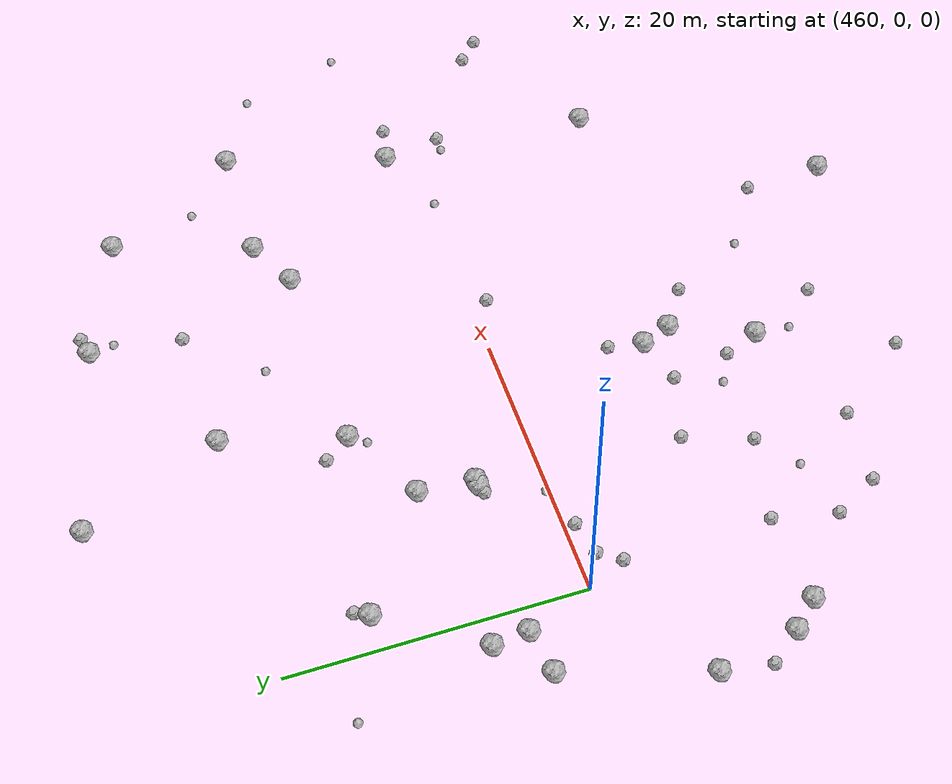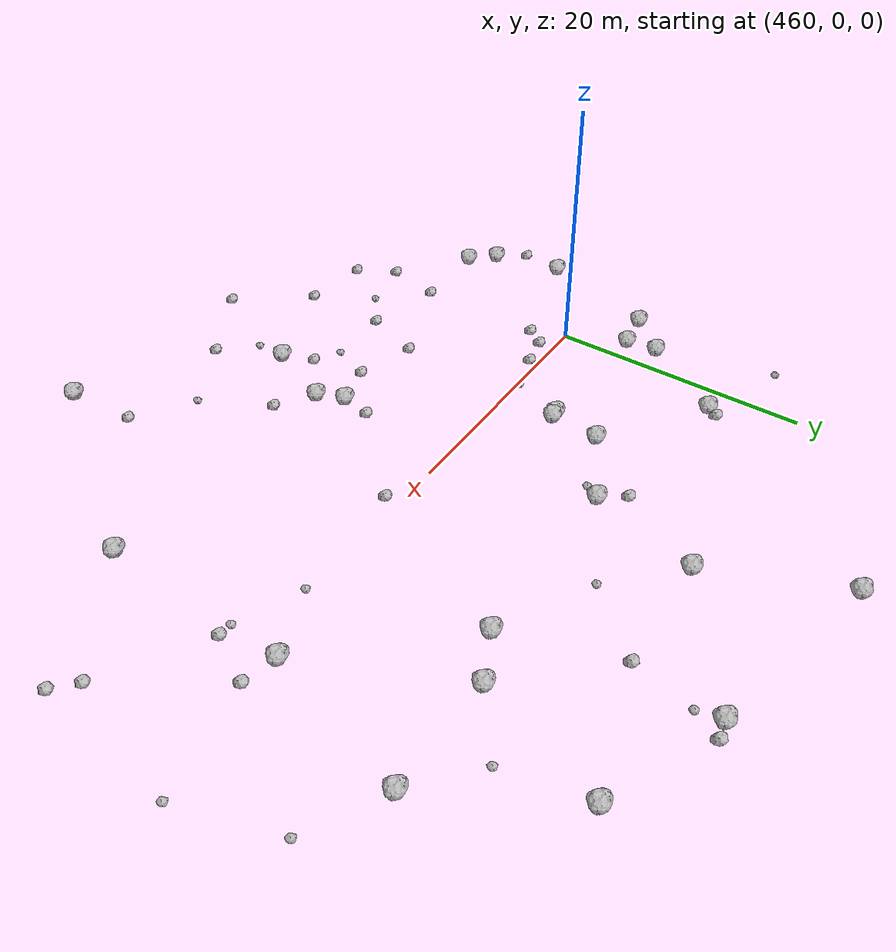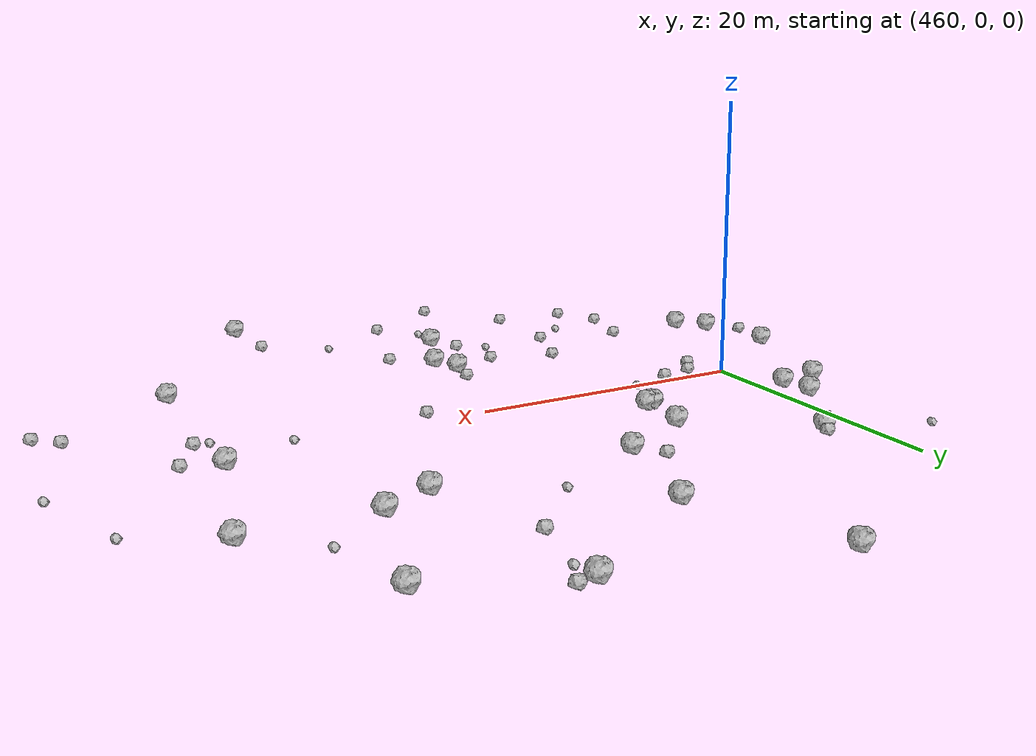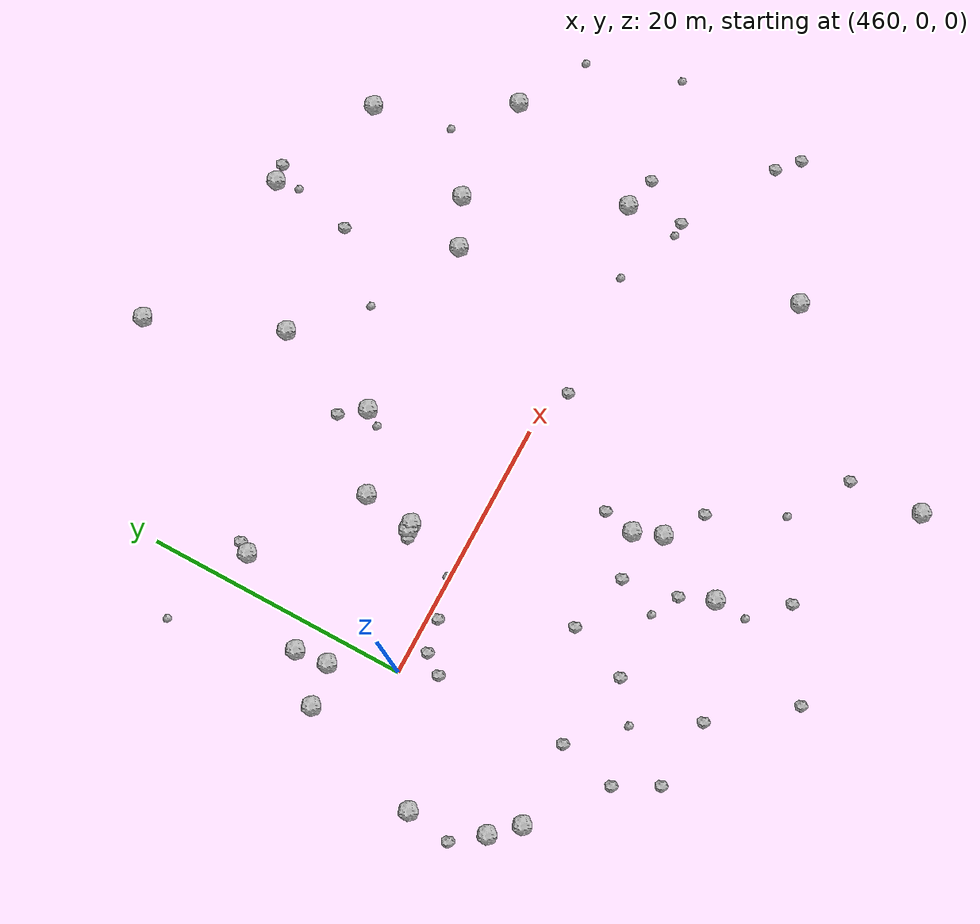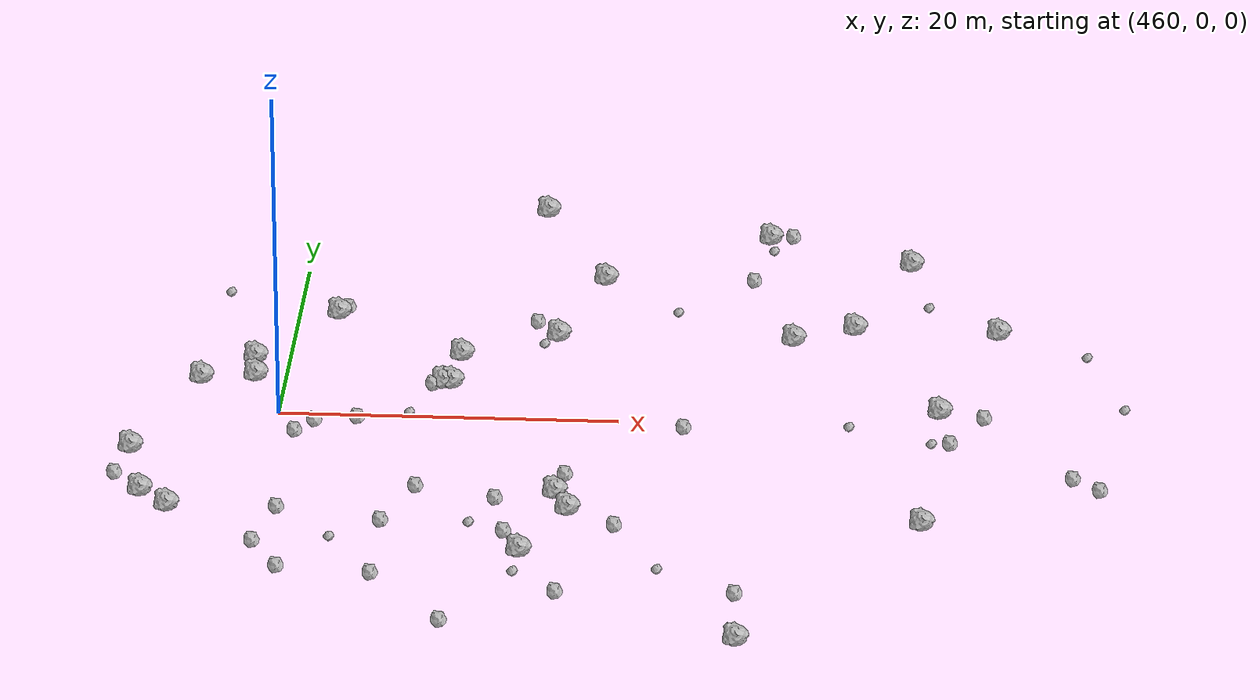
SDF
<sdf version="1.6">
 <world name="default">
  <include><uri>model://sun</uri></include>
  <model name="rock1_12_3">
   <include><uri>model://rock1</uri><pose>475.8442910195171 11.251353177630271 0.5 0 0 0</pose></include>
  </model>
  <model name="rock1_12_4">
   <include><uri>model://rock1</uri><pose>498.06001985945545 -13.038153300819602 0.5 0 0 0</pose></include>
  </model>
  <model name="rock1_12_5">
   <include><uri>model://rock1</uri><pose>453.0960426240327 -11.013474816293595 0.5 0 0 0</pose></include>
  </model>
  <model name="rock1_12_6">
   <include><uri>model://rock1</uri><pose>477.7838059551249 -12.144639328598117 0.5 0 0 0</pose></include>
  </model>
  <model name="rock1_12_7">
   <include><uri>model://rock1</uri><pose>498.8344683931514 1.704171813327271 0.5 0 0 0</pose></include>
  </model>
  <model name="rock1_12_8">
   <include><uri>model://rock1</uri><pose>493.55645538695524 13.079697505131683 0.5 0 0 0</pose></include>
  </model>
  <model name="rock1_12_9">
   <include><uri>model://rock1</uri><pose>474.07843626242436 29.374352875696488 0.5 0 0 0</pose></include>
  </model>
  <model name="rock1_12_10">
   <include><uri>model://rock1</uri><pose>470.2454827259702 8.221763390067302 0.5 0 0 0</pose></include>
  </model>
  <model name="rock1_12_11">
   <include><uri>model://rock1</uri><pose>462.4139735472647 13.698806191569169 0.5 0 0 0</pose></include>
  </model>
  <model name="rock1_12_12">
   <include><uri>model://rock1</uri><pose>469.9201415987065 4.350226567593481 0.5 0 0 0</pose></include>
  </model>
  <model name="rock1_12_13">
   <include><uri>model://rock1</uri><pose>451.9213062337228 -5.385150036978015 0.5 0 0 0</pose></include>
  </model>
  <model name="rock1_12_14">
   <include><uri>model://rock1</uri><pose>455.0627278788144 4.218671527680279 0.5 0 0 0</pose></include>
  </model>
  <model name="rock1_12_15">
   <include><uri>model://rock1</uri><pose>458.23446405049947 4.710366569108679 0.5 0 0 0</pose></include>
  </model>
  <model name="rock1_12_16">
   <include><uri>model://rock1</uri><pose>496.76543327298106 22.47018915423333 0.5 0 0 0</pose></include>
  </model>
  <model name="rock1_12_17">
   <include><uri>model://rock1</uri><pose>478.21526285413086 19.487351526647522 0.5 0 0 0</pose></include>
  </model>
  <model name="rock1_12_18">
   <include><uri>model://rock1</uri><pose>454.83975791321143 -12.881580612366584 0.5 0 0 0</pose></include>
  </model>
  <model name="rock1_12_19">
   <include><uri>model://rock1</uri><pose>489.9276836727248 11.34329767935705 0.5 0 0 0</pose></include>
  </model>
  <model name="rock1_12_20">
   <include><uri>model://rock1</uri><pose>469.422989177643 4.3171709832793965 0.5 0 0 0</pose></include>
  </model>
  <model name="rock1_12_21">
   <include><uri>model://rock1</uri><pose>502.17591623206533 12.8424611449149 0.5 0 0 0</pose></include>
  </model>
  <model name="rock1_12_22">
   <include><uri>model://rock1</uri><pose>475.3538600189823 -17.5904223011849 0.5 0 0 0</pose></include>
  </model>
  <model name="rock1_12_23">
   <include><uri>model://rock1</uri><pose>457.9885690891316 7.196711530131289 0.5 0 0 0</pose></include>
  </model>
  <model name="rock1_12_24">
   <include><uri>model://rock1</uri><pose>488.0258498432162 25.982878152620145 0.5 0 0 0</pose></include>
  </model>
  <model name="rock1_12_25">
   <include><uri>model://rock1</uri><pose>476.9324257382715 -10.018574057726777 0.5 0 0 0</pose></include>
  </model>
  <model name="rock1_12_26">
   <include><uri>model://rock1</uri><pose>488.0647958386327 -27.847822977042064 0.5 0 0 0</pose></include>
  </model>
  <model name="rock2_12_0">
   <include><uri>model://rock2</uri><pose>461.1161613957313 -12.736172520726907 0.3 0 0 0</pose></include>
  </model>
  <model name="rock2_12_1">
   <include><uri>model://rock2</uri><pose>483.87069675909544 -1.0853245197209844 0.3 0 0 0</pose></include>
  </model>
  <model name="rock2_12_2">
   <include><uri>model://rock2</uri><pose>506.6083744265853 -6.727543735776155 0.3 0 0 0</pose></include>
  </model>
  <model name="rock2_12_3">
   <include><uri>model://rock2</uri><pose>467.1981563583752 -14.133214582170115 0.3 0 0 0</pose></include>
  </model>
  <model name="rock2_12_4">
   <include><uri>model://rock2</uri><pose>477.70108916155135 -22.57702231718458 0.3 0 0 0</pose></include>
  </model>
  <model name="rock2_12_5">
   <include><uri>model://rock2</uri><pose>467.18449112107106 -20.795442002911905 0.3 0 0 0</pose></include>
  </model>
  <model name="rock2_12_6">
   <include><uri>model://rock2</uri><pose>477.3548247839383 -7.626686463556986 0.3 0 0 0</pose></include>
  </model>
  <model name="rock2_12_7">
   <include><uri>model://rock2</uri><pose>461.81352298472797 -20.204897119300792 0.3 0 0 0</pose></include>
  </model>
  <model name="rock2_12_8">
   <include><uri>model://rock2</uri><pose>464.7119466399172 -0.6679870346802694 0.3 0 0 0</pose></include>
  </model>
  <model name="rock2_12_9">
   <include><uri>model://rock2</uri><pose>487.20970470647666 19.680693612135393 0.3 0 0 0</pose></include>
  </model>
  <model name="rock2_12_10">
   <include><uri>model://rock2</uri><pose>468.8551659668065 -9.611978638748425 0.3 0 0 0</pose></include>
  </model>
  <model name="rock2_12_11">
   <include><uri>model://rock2</uri><pose>474.45147877629864 13.083356502713087 0.3 0 0 0</pose></include>
  </model>
  <model name="rock2_12_12">
   <include><uri>model://rock2</uri><pose>487.7499077809768 -22.277339151625426 0.3 0 0 0</pose></include>
  </model>
  <model name="rock2_12_13">
   <include><uri>model://rock2</uri><pose>480.5423537677373 -14.061605856523 0.3 0 0 0</pose></include>
  </model>
  <model name="rock2_12_14">
   <include><uri>model://rock2</uri><pose>468.81102008954474 4.081080546090405 0.3 0 0 0</pose></include>
  </model>
  <model name="rock2_12_15">
   <include><uri>model://rock2</uri><pose>499.46317024232474 -2.417030152839125 0.3 0 0 0</pose></include>
  </model>
  <model name="rock2_12_16">
   <include><uri>model://rock2</uri><pose>501.40128864517 1.0988447612725807 0.3 0 0 0</pose></include>
  </model>
  <model name="rock2_12_17">
   <include><uri>model://rock2</uri><pose>460.13958252552163 -17.099250500101537 0.3 0 0 0</pose></include>
  </model>
  <model name="rock2_12_18">
   <include><uri>model://rock2</uri><pose>489.3530336268446 26.2704478250824 0.3 0 0 0</pose></include>
  </model>
  <model name="rock2_12_19">
   <include><uri>model://rock2</uri><pose>451.3503358176277 -8.817719152410763 0.3 0 0 0</pose></include>
  </model>
  <model name="rock2_12_20">
   <include><uri>model://rock2</uri><pose>462.24453700213235 -1.1935101871437155 0.3 0 0 0</pose></include>
  </model>
  <model name="rock2_12_21">
   <include><uri>model://rock2</uri><pose>471.4906660173215 -26.379677520311326 0.3 0 0 0</pose></include>
  </model>
  <model name="rock2_12_22">
   <include><uri>model://rock2</uri><pose>461.20605261862545 -2.655789254916968 0.3 0 0 0</pose></include>
  </model>
  <model name="rock2_12_23">
   <include><uri>model://rock2</uri><pose>474.2980929035106 -15.125343217836472 0.3 0 0 0</pose></include>
  </model>
  <model name="rock2_12_24">
   <include><uri>model://rock2</uri><pose>473.5232452059449 -10.958533729676688 0.3 0 0 0</pose></include>
  </model>
  <model name="rock2_12_25">
   <include><uri>model://rock2</uri><pose>508.1654777651438 -8.150862513006171 0.3 0 0 0</pose></include>
  </model>
  <model name="rock2_12_26">
   <include><uri>model://rock2</uri><pose>462.88300794036127 14.59761253031818 0.3 0 0 0</pose></include>
  </model>
  <model name="rock3_12_0">
   <include><uri>model://rock3</uri><pose>498.38349264841844 -2.4385611387837685 0.2 0 0 0</pose></include>
  </model>
  <model name="rock3_12_1">
   <include><uri>model://rock3</uri><pose>509.6389820801079 2.717281046441883 0.2 0 0 0</pose></include>
  </model>
  <model name="rock3_12_2">
   <include><uri>model://rock3</uri><pose>475.144671886096 -20.100911161973816 0.2 0 0 0</pose></include>
  </model>
  <model name="rock3_12_3">
   <include><uri>model://rock3</uri><pose>482.81586186204396 14.946727194080601 0.2 0 0 0</pose></include>
  </model>
  <model name="rock3_12_4">
   <include><uri>model://rock3</uri><pose>455.56217019669197 16.439668437463766 0.2 0 0 0</pose></include>
  </model>
  <model name="rock3_12_5">
   <include><uri>model://rock3</uri><pose>464.43925431215604 -16.281483381547474 0.2 0 0 0</pose></include>
  </model>
  <model name="rock3_12_6">
   <include><uri>model://rock3</uri><pose>483.2399322028511 -19.432702235022116 0.2 0 0 0</pose></include>
  </model>
  <model name="rock3_12_7">
   <include><uri>model://rock3</uri><pose>467.7099150989872 0.19752091960032558 0.2 0 0 0</pose></include>
  </model>
  <model name="rock3_12_8">
   <include><uri>model://rock3</uri><pose>472.2248805959666 -14.049869502217618 0.2 0 0 0</pose></include>
  </model>
  <model name="rock3_12_9">
   <include><uri>model://rock3</uri><pose>493.53056875309954 -0.40880002761055323 0.2 0 0 0</pose></include>
  </model>
  <model name="rock3_12_10">
   <include><uri>model://rock3</uri><pose>475.03443372325796 10.0895226854758 0.2 0 0 0</pose></include>
  </model>
  <model name="rock3_12_11">
   <include><uri>model://rock3</uri><pose>507.4398126902284 9.864106725517551 0.2 0 0 0</pose></include>
  </model>
  <model name="rock3_12_12">
   <include><uri>model://rock3</uri><pose>497.90298502292114 16.417937814760172 0.2 0 0 0</pose></include>
  </model>
  <model name="rock3_12_13">
   <include><uri>model://rock3</uri><pose>488.25674247310167 24.204959807969026 0.2 0 0 0</pose></include>
  </model>
 </world>
</sdf>
